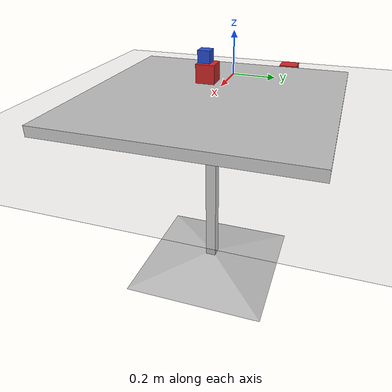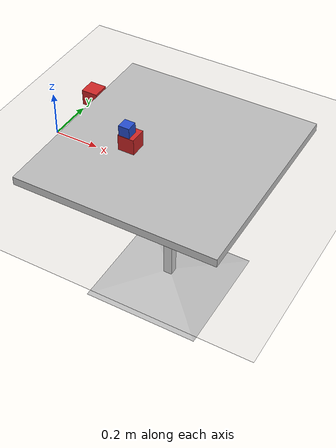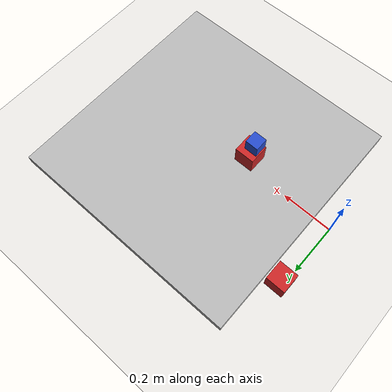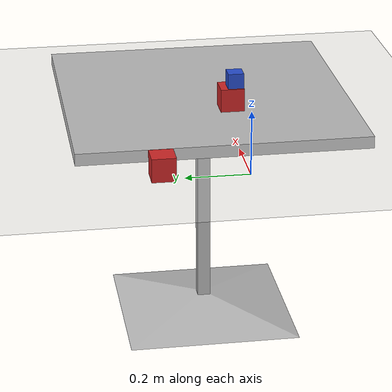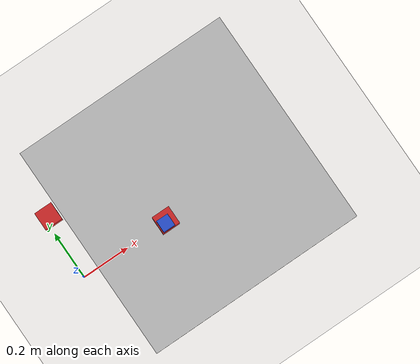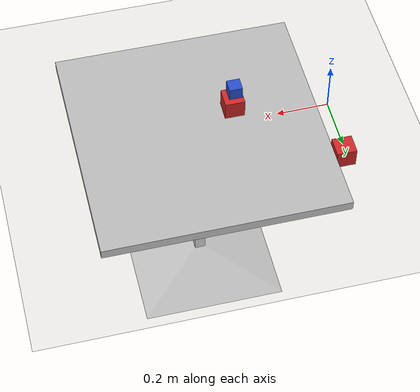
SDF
<sdf version="1.7">
 <world name="default">
  <light name="sun" type="directional">
   <pose>0 0 10 0 -0 0</pose>
   <diffuse>0.8 0.8 0.8 1</diffuse>
   <specular>0.2 0.2 0.2 1</specular>
   <attenuation>
    <range>1000</range>
    <constant>0.9</constant>
    <linear>0.01</linear>
    <quadratic>0.001</quadratic>
   </attenuation>
   <direction>-0.5 0.1 -0.9</direction>
   <spot><inner_angle>0</inner_angle><outer_angle>0</outer_angle><falloff>0</falloff></spot>
  </light>
  <model name="ground_plane">
   <static>1</static>
   <link name="link">
    <collision name="collision">
     <geometry><plane><normal>0 0 1</normal><size>100 100</size></plane></geometry>
     <surface><friction><ode><mu>100</mu><mu2>50</mu2></ode></friction></surface>
    </collision>
    <visual name="visual">
     <cast_shadows>0</cast_shadows>
     <geometry><plane><normal>0 0 1</normal><size>100 100</size></plane></geometry>
     <material>
      <script><uri>file://media/materials/scripts/gazebo.material</uri><name>Gazebo/Grey</name></script>
     </material>
    </visual>
   </link>
  </model>
  <gravity>0 0 -9.8</gravity>
  <magnetic_field>6e-06 2.3e-05 -4.2e-05</magnetic_field>
  <atmosphere type="adiabatic"/>
  <physics type="ode">
   <max_step_size>0.001</max_step_size>
   <real_time_factor>1</real_time_factor>
   <real_time_update_rate>1000</real_time_update_rate>
  </physics>
  <scene><ambient>0.4 0.4 0.4 1</ambient><background>0.7 0.7 0.7 1</background><shadows>1</shadows></scene>
  <audio><device>default</device></audio>
  <spherical_coordinates>
   <surface_model>EARTH_WGS84</surface_model>
   <latitude_deg>0</latitude_deg>
   <longitude_deg>0</longitude_deg>
   <elevation>0</elevation>
   <heading_deg>0</heading_deg>
  </spherical_coordinates>
  <model name="cafe_table">
   <static>1</static>
   <link name="link">
    <collision name="surface">
     <pose>0 0 0.755 0 -0 0</pose>
     <geometry><box><size>0.913 0.913 0.04</size></box></geometry>
    </collision>
    <collision name="column">
     <pose>0 0 0.37 0 -0 0</pose>
     <geometry><box><size>0.042 0.042 0.74</size></box></geometry>
    </collision>
    <collision name="base">
     <pose>0 0 0.02 0 -0 0</pose>
     <geometry><box><size>0.56 0.56 0.04</size></box></geometry>
    </collision>
    <visual name="visual">
     <geometry><mesh><uri>model://cafe_table/meshes/cafe_table.dae</uri></mesh></geometry>
    </visual>
   </link>
   <pose>0.521003 0.063927 -0.703116 0 -0 0</pose>
  </model>
  <model name="wood_cube_5cm">
   <link name="link">
    <pose>0 0 0.025 0 -0 0</pose>
    <inertial>
     <mass>0.00005</mass>
     <inertia>
      <ixx>2.35417e-05</ixx>
      <ixy>0</ixy>
      <ixz>0</ixz>
      <iyy>2.35417e-05</iyy>
      <iyz>0</iyz>
      <izz>2.35417e-05</izz>
     </inertia>
    </inertial>
    <collision name="collision">
     <geometry><box><size>0.05 0.05 0.05</size></box></geometry>
     <surface>
      <contact>
       <poissons_ratio>0.347</poissons_ratio>
       <elastic_modulus>8.8e+09</elastic_modulus>
       <ode><kp>100000</kp><kd>1</kd><max_vel>1</max_vel><min_depth>0.001</min_depth></ode>
      </contact>
      <friction>
       <torsional>
        <coefficient>1</coefficient>
        <use_patch_radius>0</use_patch_radius>
        <surface_radius>0.05</surface_radius>
       </torsional>
      </friction>
     </surface>
    </collision>
    <visual name="visual">
     <geometry><box><size>0.05 0.05 0.05</size></box></geometry>
     <material>
      <script><uri>file://media/materials/scripts/gazebo.material</uri><name>Gazebo/Blue</name></script>
     </material>
    </visual>
   </link>
   <pose>0.366233 -0.013041 0.144875 1.1e-05 -8e-06 -0.003532</pose>
  </model>
  <model name="wood_cube_7_5cm">
   <link name="link">
    <pose>0 0 0.0375 0 -0 0</pose>
    <inertial>
     <mass>0.2249</mass>
     <inertia>
      <ixx>0.000210844</ixx>
      <ixy>0</ixy>
      <ixz>0</ixz>
      <iyy>0.000210844</iyy>
      <iyz>0</iyz>
      <izz>0.000210844</izz>
     </inertia>
    </inertial>
    <collision name="collision">
     <geometry><box><size>0.075 0.075 0.075</size></box></geometry>
     <surface>
      <contact>
       <poissons_ratio>0.347</poissons_ratio>
       <elastic_modulus>8.8e+09</elastic_modulus>
       <ode><kp>100000</kp><kd>100</kd><max_vel>100</max_vel><min_depth>0.001</min_depth></ode>
      </contact>
      <friction>
       <torsional>
        <coefficient>1</coefficient>
        <use_patch_radius>0</use_patch_radius>
        <surface_radius>0.01</surface_radius>
       </torsional>
      </friction>
     </surface>
    </collision>
    <visual name="visual">
     <geometry><box><size>0.075 0.075 0.075</size></box></geometry>
     <material>
      <script><uri>file://media/materials/scripts/gazebo.material</uri><name>Gazebo/Red</name></script>
     </material>
    </visual>
   </link>
   <pose>0.37427 -0.002137 0.070877 1.1e-05 -8e-06 -0.001696</pose>
  </model>
  <model name="wood_cube_7_5cm_clone">
   <link name="link">
    <pose>0 0 0.0375 0 -0 0</pose>
    <inertial>
     <mass>0.2249</mass>
     <inertia>
      <ixx>0.000210844</ixx>
      <ixy>0</ixy>
      <ixz>0</ixz>
      <iyy>0.000210844</iyy>
      <iyz>0</iyz>
      <izz>0.000210844</izz>
     </inertia>
    </inertial>
    <collision name="collision">
     <geometry><box><size>0.075 0.075 0.075</size></box></geometry>
     <surface>
      <contact>
       <poissons_ratio>0.347</poissons_ratio>
       <elastic_modulus>8.8e+09</elastic_modulus>
       <ode><kp>100000</kp><kd>100</kd><max_vel>100</max_vel><min_depth>0.001</min_depth></ode>
      </contact>
      <friction>
       <torsional>
        <coefficient>1</coefficient>
        <use_patch_radius>0</use_patch_radius>
        <surface_radius>0.01</surface_radius>
       </torsional>
      </friction>
     </surface>
    </collision>
    <visual name="visual">
     <geometry><box><size>0.075 0.075 0.075</size></box></geometry>
     <material>
      <script><uri>file://media/materials/scripts/gazebo.material</uri><name>Gazebo/Red</name></script>
     </material>
    </visual>
   </link>
   <pose>0.019001 0.264191 -0.001005 0 0 -0.001696</pose>
  </model>
 </world>
</sdf>
